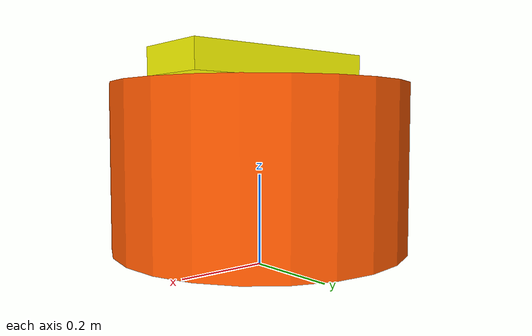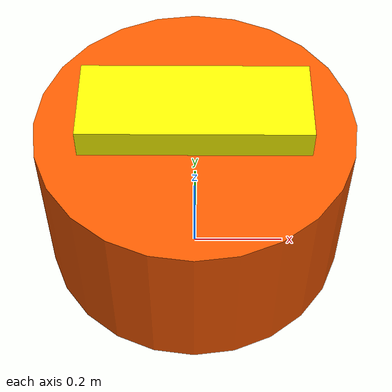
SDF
<?xml version="1.0" ?>
<sdf version="1.6">
  <model name="charging_robot">
    <static>false</static>
    <link name="base_link">
      <gravity>false</gravity>
      <visual name="body">
        <pose>0 0 0.22 0 0 0</pose>
        <geometry>
          <cylinder>
            <radius>0.32</radius>
            <length>0.35</length>
          </cylinder>
        </geometry>
        <material>
          <ambient>1.0 0.25 0.0 1</ambient>
          <diffuse>1.0 0.35 0.0 1</diffuse>
        </material>
      </visual>
      <visual name="charging_pad">
        <pose>0 0 0.44 0 0 0</pose>
        <geometry>
          <box>
            <size>0.45 0.18 0.06</size>
          </box>
        </geometry>
        <material>
          <ambient>1.0 1.0 0.0 1</ambient>
          <diffuse>1.0 1.0 0.0 1</diffuse>
        </material>
      </visual>
    </link>
  </model>
</sdf>
